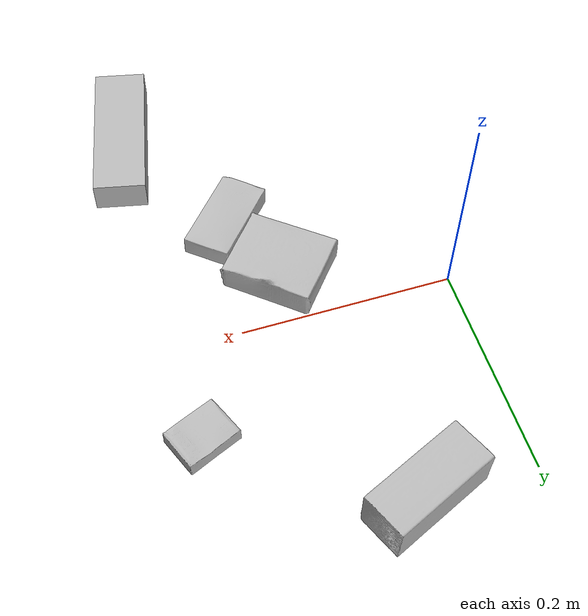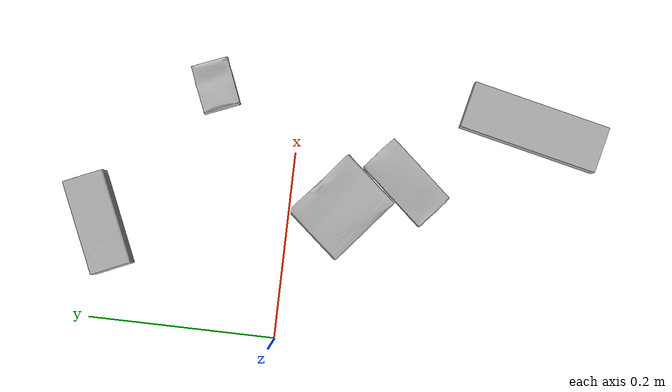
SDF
<sdf version="1.4">
  <world name="default">
    <light name="light1" type="point">
      <pose>0 0 1 0 0 0</pose>
      <diffuse>3 3 3 1</diffuse>
      <specular>3 3 3 1</specular>
    </light>
    <light name="light2" type="point">
      <pose>0 0.5 2 0 0 0</pose>
      <diffuse>1 1 1 1</diffuse>
      <specular>1 1 1 1</specular>
    </light>
    <light name="light3" type="point">
      <pose>0 0.5 2 0 0 0</pose>
      <diffuse>3 3 3 1</diffuse>
      <specular>3 3 3 1</specular>
    </light>
    <scene>
      <ambient>0.7 0.7 0.7</ambient>
    </scene>
    <model name="box1">
      <link name="link_box1">
        <collision name="default">
          <geometry>
            <mesh>
              <uri>model://sugar_box/collision_meshes/collision.obj</uri>
              <scale>0.5 0.5 0.5</scale>
            </mesh>
          </geometry>
          <surface>
            <friction>
              <ode>
                <mu>0.5</mu>
                <mu2>0.5</mu2>
              </ode>
            </friction>
          <contact>
        <ode>
            <max_vel>0</max_vel>
            <min_depth>0.0001</min_depth>
            <kp>1e8</kp>
        </ode>
    </contact></surface>
        </collision>
        <visual name="default">
          <geometry>
            <mesh>
              <uri>model://sugar_box/visual_meshes/visual.dae</uri>
              <scale>0.5 0.5 0.5</scale>
            </mesh>
          </geometry>
        </visual>
        <inertial>
          <mass>0.07249404489994049</mass>
          <pose>0.0005171863012947142 1.924554817378521e-05 -0.00018182402709499002 -0.00040462618385709627 0.0010506635220579009 0.0026153790218148127</pose>
          <inertia>
            <ixx>1.5100456e-05</ixx>
            <iyy>4.8807786e-05</iyy>
            <izz>5.842874e-05</izz>
            <ixy>0</ixy>
            <ixz>0</ixz>
            <iyz>0</iyz>
          </inertia>
        </inertial>
      </link>
      <pose>0.18103136122226715 -0.12114961445331573 0.011399298906326294 0.0007753667524854552 -0.023433343263264766 0.8577700356341788</pose>
    </model>
    <model name="box2">
      <link name="link_box2">
        <collision name="default">
          <geometry>
            <mesh>
              <uri>model://cracker_box/collision_meshes/collision.obj</uri>
              <scale>0.25 0.25 0.25</scale>
            </mesh>
          </geometry>
          <surface>
            <friction>
              <ode>
                <mu>0.5</mu>
                <mu2>0.5</mu2>
              </ode>
            </friction>
          <contact>
        <ode>
            <max_vel>0</max_vel>
            <min_depth>0.0001</min_depth>
            <kp>1e8</kp>
        </ode>
    </contact></surface>
        </collision>
        <visual name="default">
          <geometry>
            <mesh>
              <uri>model://cracker_box/visual_meshes/visual.dae</uri>
              <scale>0.25 0.25 0.25</scale>
            </mesh>
          </geometry>
        </visual>
        <inertial>
          <mass>0.019660919904708862</mass>
          <pose>0.00023660410079173744 6.358561222441494e-05 -0.0004257383698131889 -0.00031620756431779875 -0.011106489600602764 0.0025467940703044144</pose>
          <inertia>
            <ixx>3.125538e-06</ixx>
            <iyy>5.1608768e-06</iyy>
            <izz>7.365045e-06</izz>
            <ixy>0</ixy>
            <ixz>0</ixz>
            <iyz>0</iyz>
          </inertia>
        </inertial>
      </link>
      <pose>0.26141104102134705 0.09296121448278427 0.009120450355112553 -0.011788056359591943 -0.007367108095225175 -2.7552033425861104</pose>
    </model>
    <model name="box3">
      <link name="link_box3">
        <collision name="default">
          <geometry>
            <mesh>
              <uri>model://wood_block/collision_meshes/collision.obj</uri>
              <scale>0.5 0.5 0.5</scale>
            </mesh>
          </geometry>
          <surface>
            <friction>
              <ode>
                <mu>0.5</mu>
                <mu2>0.5</mu2>
              </ode>
            </friction>
          <contact>
        <ode>
            <max_vel>0</max_vel>
            <min_depth>0.0001</min_depth>
            <kp>1e8</kp>
        </ode>
    </contact></surface>
        </collision>
        <visual name="default">
          <geometry>
            <mesh>
              <uri>model://wood_block/visual_meshes/visual.dae</uri>
              <scale>0.5 0.5 0.5</scale>
            </mesh>
          </geometry>
        </visual>
        <inertial>
          <mass>0.22331082820892334</mass>
          <pose>-2.9066577553749084e-06 -0.000285404734313488 0.00013204292918089777 -0.0522110088927385 -0.005192696049127085 -0.006861379582621758</pose>
          <inertia>
            <ixx>7.470592e-05</ixx>
            <iyy>0.00023599603</iyy>
            <izz>0.0002351133</izz>
            <ixy>0</ixy>
            <ixz>0</ixz>
            <iyz>0</iyz>
          </inertia>
        </inertial>
      </link>
      <pose>0.10194502770900726 0.19846126437187195 0.022629264742136 -0.005208435660589356 0.005718714605312834 0.41465372568448267</pose>
    </model>
    <model name="box4">
      <link name="link_box4">
        <collision name="default">
          <geometry>
            <mesh>
              <uri>model://jenga/collision_meshes/collision.obj</uri>
              <scale>1.0 1.0 1.0</scale>
            </mesh>
          </geometry>
          <surface>
            <friction>
              <ode>
                <mu>0.5</mu>
                <mu2>0.5</mu2>
              </ode>
            </friction>
          <contact>
        <ode>
            <max_vel>0</max_vel>
            <min_depth>0.0001</min_depth>
            <kp>1e8</kp>
        </ode>
    </contact></surface>
        </collision>
        <visual name="default">
          <geometry>
            <mesh>
              <uri>model://jenga/visual_meshes/visual.dae</uri>
              <scale>1.0 1.0 1.0</scale>
            </mesh>
          </geometry>
        </visual>
        <inertial>
          <mass>0.1217927634716034</mass>
          <pose>-2.502855807051674e-07 -0.00010250010382151231 -4.0923401684267446e-05 0.0 -7.34215461761844e-07 0.0</pose>
          <inertia>
            <ixx>3.370301e-05</ixx>
            <iyy>0.00022837071</iyy>
            <izz>0.00024380515</izz>
            <ixy>0</ixy>
            <ixz>0</ixz>
            <iyz>0</iyz>
          </inertia>
        </inertial>
      </link>
      <pose>0.25482460856437683 -0.24920742213726044 0.014999998733401299 9.388542363975684e-09 -1.5374481137160367e-09 1.3507087755414053</pose>
    </model>
    <model name="box5">
      <link name="link_box5">
        <collision name="default">
          <geometry>
            <mesh>
              <uri>model://gelatin_box/collision_meshes/collision.obj</uri>
              <scale>1.0 1.0 1.0</scale>
            </mesh>
          </geometry>
          <surface>
            <friction>
              <ode>
                <mu>0.5</mu>
                <mu2>0.5</mu2>
              </ode>
            </friction>
          <contact>
        <ode>
            <max_vel>0</max_vel>
            <min_depth>0.0001</min_depth>
            <kp>1e8</kp>
        </ode>
    </contact></surface>
        </collision>
        <visual name="default">
          <geometry>
            <mesh>
              <uri>model://gelatin_box/visual_meshes/visual.dae</uri>
              <scale>1.0 1.0 1.0</scale>
            </mesh>
          </geometry>
        </visual>
        <inertial>
          <mass>0.09479870647192001</mass>
          <pose>0.0004319618456065655 0.00011156871914863586 -0.0003640321083366871 -0.0010503720924044775 -0.0047558191559584585 0.01644055760930107</pose>
          <inertia>
            <ixx>6.6920154e-05</ixx>
            <iyy>4.780071e-05</iyy>
            <izz>0.00010186739</izz>
            <ixy>0</ixy>
            <ixz>0</ixz>
            <iyz>0</iyz>
          </inertia>
        </inertial>
      </link>
      <pose>0.1473100632429123 -0.05566352605819702 0.015168310143053532 0.00559718842474461 -0.007304234012002719 0.865838770659725</pose>
    </model>
  <physics type="ode">
      <max_contacts>50</max_contacts>
      <ode>
        <solver>
          <type>quick</type>
          <iters>75</iters>
        </solver>
        <constraints>
          <contact_max_correcting_vel>0</contact_max_correcting_vel>
          <contact_surface_layer>0</contact_surface_layer>
        </constraints>
      </ode>
    </physics></world>
</sdf>
